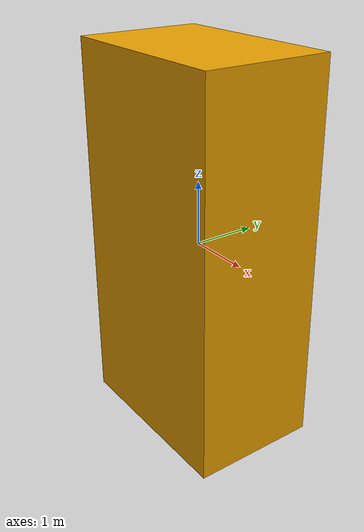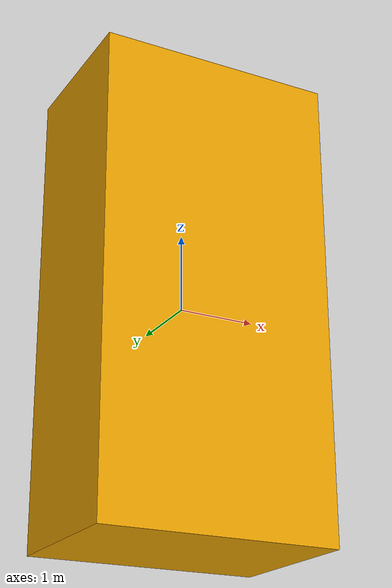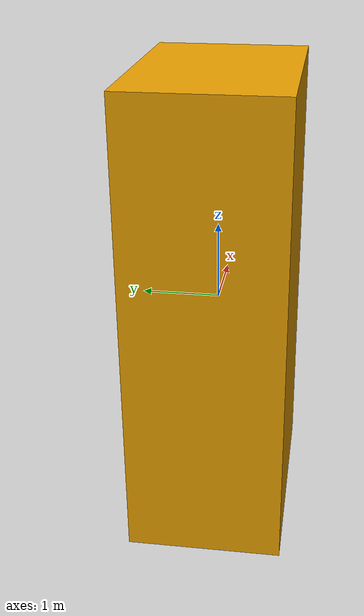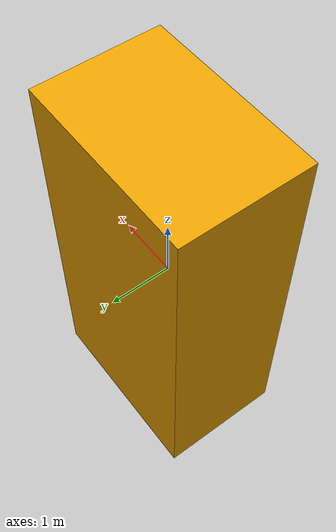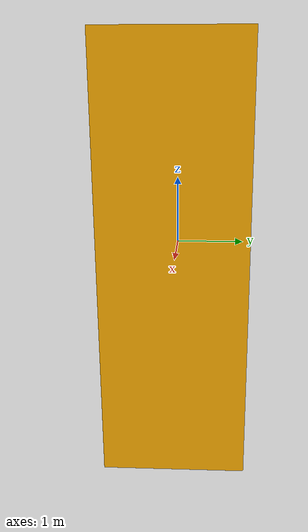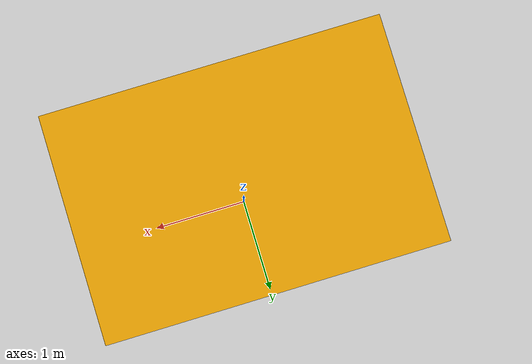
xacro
<?xml version="1.0" encoding="UTF-8" ?>
<robot xmlns:xacro="http://www.ros.org/wiki/xacro" name="box">

    <xacro:property name="a" value="1"/>
    <xacro:property name="b" value="2"/>
    <xacro:property name="c" value="3"/>

    <!-- link -->
    <link name="base">
        <visual>
            <geometry>
                <box size="${a + b} ${a - c} ${b * c}"/>
            </geometry>
        </visual>
    </link>

</robot>
